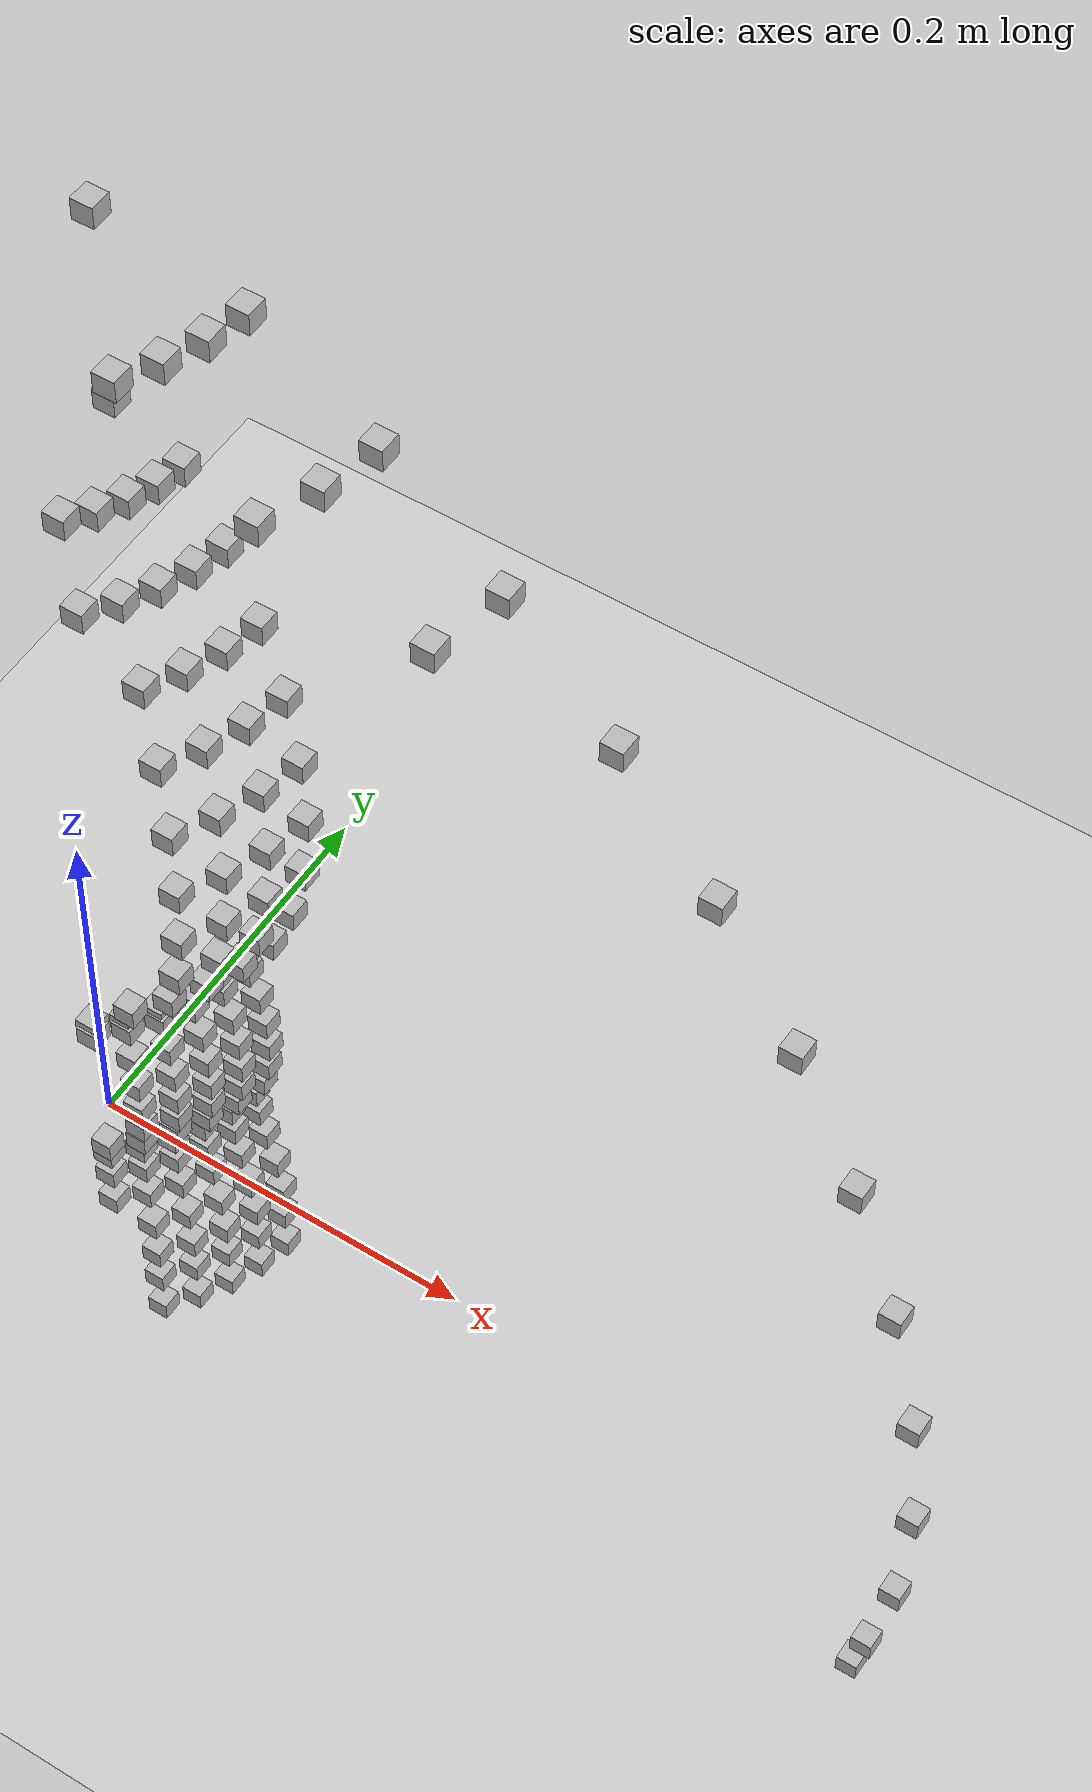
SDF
<sdf version="1.6">
 <world name="default">
  <model name="ground_plane">
   <static>1</static>
   <link name="link">
    <collision name="collision">
     <geometry><plane><normal>0 0 1</normal><size>100 100</size></plane></geometry>
     <surface>
      <contact><collide_bitmask>65535</collide_bitmask></contact>
      <friction><ode><mu>100</mu><mu2>50</mu2></ode></friction>
     </surface>
    </collision>
    <visual name="visual">
     <cast_shadows>0</cast_shadows>
     <geometry><plane><normal>0 0 1</normal><size>100 100</size></plane></geometry>
     <material>
      <script><uri>file://media/materials/scripts/gazebo.material</uri><name>Gazebo/Grey</name></script>
     </material>
    </visual>
   </link>
  </model>
  <model name="box_1685262135_6583939">
   <pose>0.4540607270147136 -0.07191615412157747 0.031024085780011867 0.0 0.0 0.0</pose>
   <static>1</static>
   <link name="box_1685262135_6583939_link">
    <visual name="visual"><geometry><box><size>0.01 0.01 0.01</size></box></geometry></visual>
   </link>
  </model>
  <model name="box_1685262135_6591275">
   <pose>0.45952052723412273 -0.07278090152361237 0.05746253559996678 0.0 0.0 0.0</pose>
   <static>1</static>
   <link name="box_1685262135_6591275_link">
    <visual name="visual"><geometry><box><size>0.01 0.01 0.01</size></box></geometry></visual>
   </link>
  </model>
  <model name="box_1685262135_6598735">
   <pose>0.46918485321748127 -0.07431158038560048 0.11486971929344875 0.0 0.0 0.0</pose>
   <static>1</static>
   <link name="box_1685262135_6598735_link">
    <visual name="visual"><geometry><box><size>0.01 0.01 0.01</size></box></geometry></visual>
   </link>
  </model>
  <model name="box_1685262135_6605964">
   <pose>0.4716907040106615 -0.07470846816101512 0.18152491402812204 0.0 0.0 0.0</pose>
   <static>1</static>
   <link name="box_1685262135_6605964_link">
    <visual name="visual"><geometry><box><size>0.01 0.01 0.01</size></box></geometry></visual>
   </link>
  </model>
  <model name="box_1685262135_6613216">
   <pose>0.46500195805747285 -0.07364907487674634 0.24785452819062248 0.0 0.0 0.0</pose>
   <static>1</static>
   <link name="box_1685262135_6613216_link">
    <visual name="visual"><geometry><box><size>0.01 0.01 0.01</size></box></geometry></visual>
   </link>
  </model>
  <model name="box_1685262135_6620796">
   <pose>0.4492444677104007 -0.07115333358720603 0.31265492137086764 0.0 0.0 0.0</pose>
   <static>1</static>
   <link name="box_1685262135_6620796_link">
    <visual name="visual"><geometry><box><size>0.01 0.01 0.01</size></box></geometry></visual>
   </link>
  </model>
  <model name="box_1685262135_6628158">
   <pose>0.4247687477728366 -0.06727676038335484 0.37450685986133164 0.0 0.0 0.0</pose>
   <static>1</static>
   <link name="box_1685262135_6628158_link">
    <visual name="visual"><geometry><box><size>0.01 0.01 0.01</size></box></geometry></visual>
   </link>
  </model>
  <model name="box_1685262135_6634986">
   <pose>0.08917823515234025 -0.07752145711978618 0.005648136022940203 0.0 0.0 0.0</pose>
   <static>1</static>
   <link name="box_1685262135_6634986_link">
    <visual name="visual"><geometry><box><size>0.01 0.01 0.01</size></box></geometry></visual>
   </link>
  </model>
  <model name="box_1685262135_6635146">
   <pose>0.09909926027639297 -0.06435581210374602 0.005648136022940203 0.0 0.0 0.0</pose>
   <static>1</static>
   <link name="box_1685262135_6635146_link">
    <visual name="visual"><geometry><box><size>0.01 0.01 0.01</size></box></geometry></visual>
   </link>
  </model>
  <model name="box_1685262135_6635308">
   <pose>0.10709143102290353 -0.04993755440875771 0.005648136022940203 0.0 0.0 0.0</pose>
   <static>1</static>
   <link name="box_1685262135_6635308_link">
    <visual name="visual"><geometry><box><size>0.01 0.01 0.01</size></box></geometry></visual>
   </link>
  </model>
  <model name="box_1685262135_663549">
   <pose>0.11299918887925056 -0.034547319020329155 0.005648136022940203 0.0 0.0 0.0</pose>
   <static>1</static>
   <link name="box_1685262135_663549_link">
    <visual name="visual"><geometry><box><size>0.01 0.01 0.01</size></box></geometry></visual>
   </link>
  </model>
  <model name="box_1685262135_6635656">
   <pose>0.11670754605873525 -0.018484659364162822 0.005648136022940203 0.0 0.0 0.0</pose>
   <static>1</static>
   <link name="box_1685262135_6635656_link">
    <visual name="visual"><geometry><box><size>0.01 0.01 0.01</size></box></geometry></visual>
   </link>
  </model>
  <model name="box_1685262135_66429">
   <pose>0.3919687994635383 -0.062081758927712914 0.4324042100445494 0.0 0.0 0.0</pose>
   <static>1</static>
   <link name="box_1685262135_66429_link">
    <visual name="visual"><geometry><box><size>0.01 0.01 0.01</size></box></geometry></visual>
   </link>
  </model>
  <model name="box_1685262135_6649668">
   <pose>0.0887224774976129 -0.07712527303487347 0.02920890265866033 0.0 0.0 0.0</pose>
   <static>1</static>
   <link name="box_1685262135_6649668_link">
    <visual name="visual"><geometry><box><size>0.01 0.01 0.01</size></box></geometry></visual>
   </link>
  </model>
  <model name="box_1685262135_6649828">
   <pose>0.09859279985618362 -0.06402691286120807 0.02920890265866033 0.0 0.0 0.0</pose>
   <static>1</static>
   <link name="box_1685262135_6649828_link">
    <visual name="visual"><geometry><box><size>0.01 0.01 0.01</size></box></geometry></visual>
   </link>
  </model>
  <model name="box_1685262135_6649992">
   <pose>0.10654412551320133 -0.04968234165823315 0.02920890265866033 0.0 0.0 0.0</pose>
   <static>1</static>
   <link name="box_1685262135_6649992_link">
    <visual name="visual"><geometry><box><size>0.01 0.01 0.01</size></box></geometry></visual>
   </link>
  </model>
  <model name="box_1685262135_6650147">
   <pose>0.1124216909592511 -0.03437076018770676 0.02920890265866033 0.0 0.0 0.0</pose>
   <static>1</static>
   <link name="box_1685262135_6650147_link">
    <visual name="visual"><geometry><box><size>0.01 0.01 0.01</size></box></geometry></visual>
   </link>
  </model>
  <model name="box_1685262135_6650329">
   <pose>0.11611109606855717 -0.01839019096628689 0.02920890265866033 0.0 0.0 0.0</pose>
   <static>1</static>
   <link name="box_1685262135_6650329_link">
    <visual name="visual"><geometry><box><size>0.01 0.01 0.01</size></box></geometry></visual>
   </link>
  </model>
  <model name="box_1685262135_665771">
   <pose>0.35147614486358586 -0.05566835249164468 0.4851615351605009 0.0 0.0 0.0</pose>
   <static>1</static>
   <link name="box_1685262135_665771_link">
    <visual name="visual"><geometry><box><size>0.01 0.01 0.01</size></box></geometry></visual>
   </link>
  </model>
  <model name="box_1685262135_6664474">
   <pose>0.0889275985518072 -0.07730358204693145 0.05028140928145608 0.0 0.0 0.0</pose>
   <static>1</static>
   <link name="box_1685262135_6664474_link">
    <visual name="visual"><geometry><box><size>0.01 0.01 0.01</size></box></geometry></visual>
   </link>
  </model>
  <model name="box_1685262135_6664631">
   <pose>0.09882074050451606 -0.06417493924903352 0.05028140928145608 0.0 0.0 0.0</pose>
   <static>1</static>
   <link name="box_1685262135_6664631_link">
    <visual name="visual"><geometry><box><size>0.01 0.01 0.01</size></box></geometry></visual>
   </link>
  </model>
  <model name="box_1685262135_6664793">
   <pose>0.1067904491502308 -0.04979720425656458 0.05028140928145608 0.0 0.0 0.0</pose>
   <static>1</static>
   <link name="box_1685262135_6664793_link">
    <visual name="visual"><geometry><box><size>0.01 0.01 0.01</size></box></geometry></visual>
   </link>
  </model>
  <model name="box_1685262135_6664953">
   <pose>0.11268160317557177 -0.03445022332672191 0.05028140928145608 0.0 0.0 0.0</pose>
   <static>1</static>
   <link name="box_1685262135_6664953_link">
    <visual name="visual"><geometry><box><size>0.01 0.01 0.01</size></box></geometry></visual>
   </link>
  </model>
  <model name="box_1685262135_666511">
   <pose>0.11637953796852414 -0.018432707986372816 0.05028140928145608 0.0 0.0 0.0</pose>
   <static>1</static>
   <link name="box_1685262135_666511_link">
    <visual name="visual"><geometry><box><size>0.01 0.01 0.01</size></box></geometry></visual>
   </link>
  </model>
  <model name="box_1685262135_6672397">
   <pose>0.304111045966668 -0.04816645781194004 0.5316791207351375 0.0 0.0 0.0</pose>
   <static>1</static>
   <link name="box_1685262135_6672397_link">
    <visual name="visual"><geometry><box><size>0.01 0.01 0.01</size></box></geometry></visual>
   </link>
  </model>
  <model name="box_1685262135_667919">
   <pose>0.08671504892758838 -0.07538024200183777 0.06994559093984248 0.0 0.0 0.0</pose>
   <static>1</static>
   <link name="box_1685262135_667919_link">
    <visual name="visual"><geometry><box><size>0.01 0.01 0.01</size></box></geometry></visual>
   </link>
  </model>
  <model name="box_1685262135_6679347">
   <pose>0.09636204606286965 -0.06257824440927583 0.06994559093984248 0.0 0.0 0.0</pose>
   <static>1</static>
   <link name="box_1685262135_6679347_link">
    <visual name="visual"><geometry><box><size>0.01 0.01 0.01</size></box></geometry></visual>
   </link>
  </model>
  <model name="box_1685262135_6679506">
   <pose>0.10413346558173996 -0.04855823247098531 0.06994559093984248 0.0 0.0 0.0</pose>
   <static>1</static>
   <link name="box_1685262135_6679506_link">
    <visual name="visual"><geometry><box><size>0.01 0.01 0.01</size></box></geometry></visual>
   </link>
  </model>
  <model name="box_1685262135_6679661">
   <pose>0.10987804564312317 -0.03359308977181784 0.06994559093984248 0.0 0.0 0.0</pose>
   <static>1</static>
   <link name="box_1685262135_6679661_link">
    <visual name="visual"><geometry><box><size>0.01 0.01 0.01</size></box></geometry></visual>
   </link>
  </model>
  <model name="box_1685262135_667982">
   <pose>0.11348397453048746 -0.017974095791815185 0.06994559093984248 0.0 0.0 0.0</pose>
   <static>1</static>
   <link name="box_1685262135_667982_link">
    <visual name="visual"><geometry><box><size>0.01 0.01 0.01</size></box></geometry></visual>
   </link>
  </model>
  <model name="box_1685262135_6686966">
   <pose>0.24288026590292308 -0.07425594920736132 0.5710245451470004 0.0 0.0 0.0</pose>
   <static>1</static>
   <link name="box_1685262135_6686966_link">
    <visual name="visual"><geometry><box><size>0.01 0.01 0.01</size></box></geometry></visual>
   </link>
  </model>
  <model name="box_1685262135_6687126">
   <pose>0.25085100256704834 -0.039730895646430765 0.5710245451470004 0.0 0.0 0.0</pose>
   <static>1</static>
   <link name="box_1685262135_6687126_link">
    <visual name="visual"><geometry><box><size>0.01 0.01 0.01</size></box></geometry></visual>
   </link>
  </model>
  <model name="box_1685262135_66957">
   <pose>0.0716725505481329 -0.08244983781552295 0.08776207523471741 0.0 0.0 0.0</pose>
   <static>1</static>
   <link name="box_1685262135_66957_link">
    <visual name="visual"><geometry><box><size>0.01 0.01 0.01</size></box></geometry></visual>
   </link>
  </model>
  <model name="box_1685262135_6695867">
   <pose>0.08244983781552297 -0.0716725505481329 0.08776207523471741 0.0 0.0 0.0</pose>
   <static>1</static>
   <link name="box_1685262135_6695867_link">
    <visual name="visual"><geometry><box><size>0.01 0.01 0.01</size></box></geometry></visual>
   </link>
  </model>
  <model name="box_1685262135_6696033">
   <pose>0.0916223327751343 -0.059500238610641354 0.08776207523471741 0.0 0.0 0.0</pose>
   <static>1</static>
   <link name="box_1685262135_6696033_link">
    <visual name="visual"><geometry><box><size>0.01 0.01 0.01</size></box></geometry></visual>
   </link>
  </model>
  <model name="box_1685262135_66962">
   <pose>0.0990115032461365 -0.04616982220911195 0.08776207523471741 0.0 0.0 0.0</pose>
   <static>1</static>
   <link name="box_1685262135_66962_link">
    <visual name="visual"><geometry><box><size>0.01 0.01 0.01</size></box></geometry></visual>
   </link>
  </model>
  <model name="box_1685262135_669636">
   <pose>0.10447352743036831 -0.03194076273567656 0.08776207523471741 0.0 0.0 0.0</pose>
   <static>1</static>
   <link name="box_1685262135_669636_link">
    <visual name="visual"><geometry><box><size>0.01 0.01 0.01</size></box></geometry></visual>
   </link>
  </model>
  <model name="box_1685262135_6696527">
   <pose>0.10790209324004411 -0.01709001264767032 0.08776207523471741 0.0 0.0 0.0</pose>
   <static>1</static>
   <link name="box_1685262135_6696527_link">
    <visual name="visual"><geometry><box><size>0.01 0.01 0.01</size></box></geometry></visual>
   </link>
  </model>
  <model name="box_1685262135_6704595">
   <pose>0.1767150344268601 -0.08240357386436908 0.6025204345093003 0.0 0.0 0.0</pose>
   <static>1</static>
   <link name="box_1685262135_6704595_link">
    <visual name="visual"><geometry><box><size>0.01 0.01 0.01</size></box></geometry></visual>
   </link>
  </model>
  <model name="box_1685262135_6704757">
   <pose>0.1864636167643829 -0.05700764862062128 0.6025204345093003 0.0 0.0 0.0</pose>
   <static>1</static>
   <link name="box_1685262135_6704757_link">
    <visual name="visual"><geometry><box><size>0.01 0.01 0.01</size></box></geometry></visual>
   </link>
  </model>
  <model name="box_1685262135_6704924">
   <pose>0.19258289690080743 -0.030502134341712256 0.6025204345093003 0.0 0.0 0.0</pose>
   <static>1</static>
   <link name="box_1685262135_6704924_link">
    <visual name="visual"><geometry><box><size>0.01 0.01 0.01</size></box></geometry></visual>
   </link>
  </model>
  <model name="box_1685262135_671206">
   <pose>0.0692921285337603 -0.0797114755343353 0.10333120046485805 0.0 0.0 0.0</pose>
   <static>1</static>
   <link name="box_1685262135_671206_link">
    <visual name="visual"><geometry><box><size>0.01 0.01 0.01</size></box></geometry></visual>
   </link>
  </model>
  <model name="box_1685262135_6712234">
   <pose>0.0797114755343353 -0.06929212853376028 0.10333120046485805 0.0 0.0 0.0</pose>
   <static>1</static>
   <link name="box_1685262135_6712234_link">
    <visual name="visual"><geometry><box><size>0.01 0.01 0.01</size></box></geometry></visual>
   </link>
  </model>
  <model name="box_1685262135_6712399">
   <pose>0.088579329334094 -0.05752408906990363 0.10333120046485805 0.0 0.0 0.0</pose>
   <static>1</static>
   <link name="box_1685262135_6712399_link">
    <visual name="visual"><geometry><box><size>0.01 0.01 0.01</size></box></geometry></visual>
   </link>
  </model>
  <model name="box_1685262135_671257">
   <pose>0.09572308724585828 -0.04463640864498279 0.10333120046485805 0.0 0.0 0.0</pose>
   <static>1</static>
   <link name="box_1685262135_671257_link">
    <visual name="visual"><geometry><box><size>0.01 0.01 0.01</size></box></geometry></visual>
   </link>
  </model>
  <model name="box_1685262135_6712737">
   <pose>0.10100370414777984 -0.03087993129894966 0.10333120046485805 0.0 0.0 0.0</pose>
   <static>1</static>
   <link name="box_1685262135_6712737_link">
    <visual name="visual"><geometry><box><size>0.01 0.01 0.01</size></box></geometry></visual>
   </link>
  </model>
  <model name="box_1685262135_6712906">
   <pose>0.1043183988384755 -0.016522411215583697 0.10333120046485805 0.0 0.0 0.0</pose>
   <static>1</static>
   <link name="box_1685262135_6712906_link">
    <visual name="visual"><geometry><box><size>0.01 0.01 0.01</size></box></geometry></visual>
   </link>
  </model>
  <model name="box_1685262135_672011">
   <pose>0.11091599736803989 -0.0720296908978802 0.6254485040649695 0.0 0.0 0.0</pose>
   <static>1</static>
   <link name="box_1685262135_672011_link">
    <visual name="visual"><geometry><box><size>0.01 0.01 0.01</size></box></geometry></visual>
   </link>
  </model>
  <model name="box_1685262135_6720273">
   <pose>0.11986116594964694 -0.05589217959770752 0.6254485040649695 0.0 0.0 0.0</pose>
   <static>1</static>
   <link name="box_1685262135_6720273_link">
    <visual name="visual"><geometry><box><size>0.01 0.01 0.01</size></box></geometry></visual>
   </link>
  </model>
  <model name="box_1685262135_672044">
   <pose>0.1264733732760996 -0.03866679059807746 0.6254485040649695 0.0 0.0 0.0</pose>
   <static>1</static>
   <link name="box_1685262135_672044_link">
    <visual name="visual"><geometry><box><size>0.01 0.01 0.01</size></box></geometry></visual>
   </link>
  </model>
  <model name="box_1685262135_6720603">
   <pose>0.13062392025306283 -0.020688796502278218 0.6254485040649695 0.0 0.0 0.0</pose>
   <static>1</static>
   <link name="box_1685262135_6720603_link">
    <visual name="visual"><geometry><box><size>0.01 0.01 0.01</size></box></geometry></visual>
   </link>
  </model>
  <model name="box_1685262135_6727426">
   <pose>0.06850178705530718 -0.0788022916666065 0.1175214826546544 0.0 0.0 0.0</pose>
   <static>1</static>
   <link name="box_1685262135_6727426_link">
    <visual name="visual"><geometry><box><size>0.01 0.01 0.01</size></box></geometry></visual>
   </link>
  </model>
  <model name="box_1685262135_6727707">
   <pose>0.07880229166660652 -0.06850178705530717 0.1175214826546544 0.0 0.0 0.0</pose>
   <static>1</static>
   <link name="box_1685262135_6727707_link">
    <visual name="visual"><geometry><box><size>0.01 0.01 0.01</size></box></geometry></visual>
   </link>
  </model>
  <model name="box_1685262135_6727903">
   <pose>0.08756899930689353 -0.0568679730786042 0.1175214826546544 0.0 0.0 0.0</pose>
   <static>1</static>
   <link name="box_1685262135_6727903_link">
    <visual name="visual"><geometry><box><size>0.01 0.01 0.01</size></box></geometry></visual>
   </link>
  </model>
  <model name="box_1685262135_6728072">
   <pose>0.09463127598393223 -0.0441272886922868 0.1175214826546544 0.0 0.0 0.0</pose>
   <static>1</static>
   <link name="box_1685262135_6728072_link">
    <visual name="visual"><geometry><box><size>0.01 0.01 0.01</size></box></geometry></visual>
   </link>
  </model>
  <model name="box_1685262135_6728237">
   <pose>0.0998516625154247 -0.03052771682562097 0.1175214826546544 0.0 0.0 0.0</pose>
   <static>1</static>
   <link name="box_1685262135_6728237_link">
    <visual name="visual"><geometry><box><size>0.01 0.01 0.01</size></box></geometry></visual>
   </link>
  </model>
  <model name="box_1685262135_672842">
   <pose>0.1031285500156371 -0.016333957675707632 0.1175214826546544 0.0 0.0 0.0</pose>
   <static>1</static>
   <link name="box_1685262135_672842_link">
    <visual name="visual"><geometry><box><size>0.01 0.01 0.01</size></box></geometry></visual>
   </link>
  </model>
  <model name="box_1685262135_6735914">
   <pose>0.06400261402086008 -0.019567562799733165 0.6394057500981778 0.0 0.0 0.0</pose>
   <static>1</static>
   <link name="box_1685262135_6735914_link">
    <visual name="visual"><geometry><box><size>0.01 0.01 0.01</size></box></geometry></visual>
   </link>
  </model>
  <model name="box_1685262135_6742835">
   <pose>0.07231282762388799 -0.08318639233533946 0.13255102465284446 0.0 0.0 0.0</pose>
   <static>1</static>
   <link name="box_1685262135_6742835_link">
    <visual name="visual"><geometry><box><size>0.01 0.01 0.01</size></box></geometry></visual>
   </link>
  </model>
  <model name="box_1685262135_6743">
   <pose>0.08318639233533948 -0.07231282762388798 0.13255102465284446 0.0 0.0 0.0</pose>
   <static>1</static>
   <link name="box_1685262135_6743_link">
    <visual name="visual"><geometry><box><size>0.01 0.01 0.01</size></box></geometry></visual>
   </link>
  </model>
  <model name="box_1685262135_6743183">
   <pose>0.09244082854310234 -0.060031775977359834 0.13255102465284446 0.0 0.0 0.0</pose>
   <static>1</static>
   <link name="box_1685262135_6743183_link">
    <visual name="visual"><geometry><box><size>0.01 0.01 0.01</size></box></geometry></visual>
   </link>
  </model>
  <model name="box_1685262135_67434">
   <pose>0.09989600917315772 -0.046582274096565436 0.13255102465284446 0.0 0.0 0.0</pose>
   <static>1</static>
   <link name="box_1685262135_67434_link">
    <visual name="visual"><geometry><box><size>0.01 0.01 0.01</size></box></geometry></visual>
   </link>
  </model>
  <model name="box_1685262135_6743646">
   <pose>0.10540682761468383 -0.03222610123703283 0.13255102465284446 0.0 0.0 0.0</pose>
   <static>1</static>
   <link name="box_1685262135_6743646_link">
    <visual name="visual"><geometry><box><size>0.01 0.01 0.01</size></box></geometry></visual>
   </link>
  </model>
  <model name="box_1685262135_674382">
   <pose>0.10886602205517945 -0.01724268397356822 0.13255102465284446 0.0 0.0 0.0</pose>
   <static>1</static>
   <link name="box_1685262135_674382_link">
    <visual name="visual"><geometry><box><size>0.01 0.01 0.01</size></box></geometry></visual>
   </link>
  </model>
  <model name="box_1685262135_675871">
   <pose>0.08593245302187841 -0.0746999417599348 0.14825398363050718 0.0 0.0 0.0</pose>
   <static>1</static>
   <link name="box_1685262135_675871_link">
    <visual name="visual"><geometry><box><size>0.01 0.01 0.01</size></box></geometry></visual>
   </link>
  </model>
  <model name="box_1685262135_6758873">
   <pose>0.09549238683246766 -0.06201348110155847 0.14825398363050718 0.0 0.0 0.0</pose>
   <static>1</static>
   <link name="box_1685262135_6758873_link">
    <visual name="visual"><geometry><box><size>0.01 0.01 0.01</size></box></geometry></visual>
   </link>
  </model>
  <model name="box_1685262135_6759067">
   <pose>0.10319366995434301 -0.04811999857282953 0.14825398363050718 0.0 0.0 0.0</pose>
   <static>1</static>
   <link name="box_1685262135_6759067_link">
    <visual name="visual"><geometry><box><size>0.01 0.01 0.01</size></box></geometry></visual>
   </link>
  </model>
  <model name="box_1685262135_6759238">
   <pose>0.10888640567161686 -0.03328991500756757 0.14825398363050718 0.0 0.0 0.0</pose>
   <static>1</static>
   <link name="box_1685262135_6759238_link">
    <visual name="visual"><geometry><box><size>0.01 0.01 0.01</size></box></geometry></visual>
   </link>
  </model>
  <model name="box_1685262135_6759408">
   <pose>0.1124597913589434 -0.017811881113400374 0.14825398363050718 0.0 0.0 0.0</pose>
   <static>1</static>
   <link name="box_1685262135_6759408_link">
    <visual name="visual"><geometry><box><size>0.01 0.01 0.01</size></box></geometry></visual>
   </link>
  </model>
  <model name="box_1685262135_6767077">
   <pose>0.08698527347190169 -0.07561514461444174 0.16428489958480497 0.0 0.0 0.0</pose>
   <static>1</static>
   <link name="box_1685262135_6767077_link">
    <visual name="visual"><geometry><box><size>0.01 0.01 0.01</size></box></geometry></visual>
   </link>
  </model>
  <model name="box_1685262135_6767237">
   <pose>0.09666233292551307 -0.06277325297801392 0.16428489958480497 0.0 0.0 0.0</pose>
   <static>1</static>
   <link name="box_1685262135_6767237_link">
    <visual name="visual"><geometry><box><size>0.01 0.01 0.01</size></box></geometry></visual>
   </link>
  </model>
  <model name="box_1685262135_6767423">
   <pose>0.10445797002050339 -0.048709551375885986 0.16428489958480497 0.0 0.0 0.0</pose>
   <static>1</static>
   <link name="box_1685262135_6767423_link">
    <visual name="visual"><geometry><box><size>0.01 0.01 0.01</size></box></geometry></visual>
   </link>
  </model>
  <model name="box_1685262135_6767633">
   <pose>0.11022045154822441 -0.03369777376251991 0.16428489958480497 0.0 0.0 0.0</pose>
   <static>1</static>
   <link name="box_1685262135_6767633_link">
    <visual name="visual"><geometry><box><size>0.01 0.01 0.01</size></box></geometry></visual>
   </link>
  </model>
  <model name="box_1685262135_6767805">
   <pose>0.11383761736046465 -0.018030107313515908 0.16428489958480497 0.0 0.0 0.0</pose>
   <static>1</static>
   <link name="box_1685262135_6767805_link">
    <visual name="visual"><geometry><box><size>0.01 0.01 0.01</size></box></geometry></visual>
   </link>
  </model>
  <model name="box_1685262135_6774693">
   <pose>0.08635262059161211 -0.07506518785596478 0.18035913689155542 0.0 0.0 0.0</pose>
   <static>1</static>
   <link name="box_1685262135_6774693_link">
    <visual name="visual"><geometry><box><size>0.01 0.01 0.01</size></box></geometry></visual>
   </link>
  </model>
  <model name="box_1685262135_6774855">
   <pose>0.09595929779209374 -0.06231669662408678 0.18035913689155542 0.0 0.0 0.0</pose>
   <static>1</static>
   <link name="box_1685262135_6774855_link">
    <visual name="visual"><geometry><box><size>0.01 0.01 0.01</size></box></geometry></visual>
   </link>
  </model>
  <model name="box_1685262135_6775043">
   <pose>0.10369823641313569 -0.048355281776612705 0.18035913689155542 0.0 0.0 0.0</pose>
   <static>1</static>
   <link name="box_1685262135_6775043_link">
    <visual name="visual"><geometry><box><size>0.01 0.01 0.01</size></box></geometry></visual>
   </link>
  </model>
  <model name="box_1685262135_6775212">
   <pose>0.10941880681739159 -0.03345268637267465 0.18035913689155542 0.0 0.0 0.0</pose>
   <static>1</static>
   <link name="box_1685262135_6775212_link">
    <visual name="visual"><geometry><box><size>0.01 0.01 0.01</size></box></geometry></visual>
   </link>
  </model>
  <model name="box_1685262135_6775374">
   <pose>0.113009664608995 -0.01789897248035923 0.18035913689155542 0.0 0.0 0.0</pose>
   <static>1</static>
   <link name="box_1685262135_6775374_link">
    <visual name="visual"><geometry><box><size>0.01 0.01 0.01</size></box></geometry></visual>
   </link>
  </model>
  <model name="box_1685262135_6782086">
   <pose>0.08403575467301609 -0.07305116703963085 0.19617448160834577 0.0 0.0 0.0</pose>
   <static>1</static>
   <link name="box_1685262135_6782086_link">
    <visual name="visual"><geometry><box><size>0.01 0.01 0.01</size></box></geometry></visual>
   </link>
  </model>
  <model name="box_1685262135_6782248">
   <pose>0.09338468193094518 -0.060644721534290166 0.19617448160834577 0.0 0.0 0.0</pose>
   <static>1</static>
   <link name="box_1685262135_6782248_link">
    <visual name="visual"><geometry><box><size>0.01 0.01 0.01</size></box></geometry></visual>
   </link>
  </model>
  <model name="box_1685262135_678241">
   <pose>0.10091598257858972 -0.04705789550663281 0.19617448160834577 0.0 0.0 0.0</pose>
   <static>1</static>
   <link name="box_1685262135_678241_link">
    <visual name="visual"><geometry><box><size>0.01 0.01 0.01</size></box></geometry></visual>
   </link>
  </model>
  <model name="box_1685262135_6782596">
   <pose>0.10648306841557081 -0.03255514107050162 0.19617448160834577 0.0 0.0 0.0</pose>
   <static>1</static>
   <link name="box_1685262135_6782596_link">
    <visual name="visual"><geometry><box><size>0.01 0.01 0.01</size></box></geometry></visual>
   </link>
  </model>
  <model name="box_1685262135_6782768">
   <pose>0.10997758244853792 -0.017418737844357223 0.19617448160834577 0.0 0.0 0.0</pose>
   <static>1</static>
   <link name="box_1685262135_6782768_link">
    <visual name="visual"><geometry><box><size>0.01 0.01 0.01</size></box></geometry></visual>
   </link>
  </model>
  <model name="box_1685262135_678941">
   <pose>0.06960324983207926 -0.08006937964673501 0.2113835132273968 0.0 0.0 0.0</pose>
   <static>1</static>
   <link name="box_1685262135_678941_link">
    <visual name="visual"><geometry><box><size>0.01 0.01 0.01</size></box></geometry></visual>
   </link>
  </model>
  <model name="box_1685262135_678957">
   <pose>0.08006937964673502 -0.06960324983207924 0.2113835132273968 0.0 0.0 0.0</pose>
   <static>1</static>
   <link name="box_1685262135_678957_link">
    <visual name="visual"><geometry><box><size>0.01 0.01 0.01</size></box></geometry></visual>
   </link>
  </model>
  <model name="box_1685262135_6789734">
   <pose>0.0889770500641365 -0.05778237193196529 0.2113835132273968 0.0 0.0 0.0</pose>
   <static>1</static>
   <link name="box_1685262135_6789734_link">
    <visual name="visual"><geometry><box><size>0.01 0.01 0.01</size></box></geometry></visual>
   </link>
  </model>
  <model name="box_1685262135_6789932">
   <pose>0.09615288341193393 -0.044836825888669524 0.2113835132273968 0.0 0.0 0.0</pose>
   <static>1</static>
   <link name="box_1685262135_6789932_link">
    <visual name="visual"><geometry><box><size>0.01 0.01 0.01</size></box></geometry></visual>
   </link>
  </model>
  <model name="box_1685262135_679012">
   <pose>0.10145721025640185 -0.03101858203058433 0.2113835132273968 0.0 0.0 0.0</pose>
   <static>1</static>
   <link name="box_1685262135_679012_link">
    <visual name="visual"><geometry><box><size>0.01 0.01 0.01</size></box></geometry></visual>
   </link>
  </model>
  <model name="box_1685262135_6790292">
   <pose>0.1047867879090951 -0.016596596756387912 0.2113835132273968 0.0 0.0 0.0</pose>
   <static>1</static>
   <link name="box_1685262135_6790292_link">
    <visual name="visual"><geometry><box><size>0.01 0.01 0.01</size></box></geometry></visual>
   </link>
  </model>
  <model name="box_1685262135_6796846">
   <pose>0.06852881772066176 -0.07883338689005656 0.21508165296930842 0.0 0.0 0.0</pose>
   <static>1</static>
   <link name="box_1685262135_6796846_link">
    <visual name="visual"><geometry><box><size>0.01 0.01 0.01</size></box></geometry></visual>
   </link>
  </model>
  <model name="box_1685262135_6797004">
   <pose>0.07883338689005658 -0.06852881772066174 0.21508165296930842 0.0 0.0 0.0</pose>
   <static>1</static>
   <link name="box_1685262135_6797004_link">
    <visual name="visual"><geometry><box><size>0.01 0.01 0.01</size></box></geometry></visual>
   </link>
  </model>
  <model name="box_1685262135_6797166">
   <pose>0.08760355385528493 -0.05689041306470908 0.21508165296930842 0.0 0.0 0.0</pose>
   <static>1</static>
   <link name="box_1685262135_6797166_link">
    <visual name="visual"><geometry><box><size>0.01 0.01 0.01</size></box></geometry></visual>
   </link>
  </model>
  <model name="box_1685262135_6797328">
   <pose>0.09466861729228572 -0.04414470123033756 0.21508165296930842 0.0 0.0 0.0</pose>
   <static>1</static>
   <link name="box_1685262135_6797328_link">
    <visual name="visual"><geometry><box><size>0.01 0.01 0.01</size></box></geometry></visual>
   </link>
  </model>
  <model name="box_1685262135_6797485">
   <pose>0.09989106377764831 -0.030539763000370927 0.21508165296930842 0.0 0.0 0.0</pose>
   <static>1</static>
   <link name="box_1685262135_6797485_link">
    <visual name="visual"><geometry><box><size>0.01 0.01 0.01</size></box></geometry></visual>
   </link>
  </model>
  <model name="box_1685262135_6797674">
   <pose>0.10316924433097992 -0.016340403022067594 0.21508165296930842 0.0 0.0 0.0</pose>
   <static>1</static>
   <link name="box_1685262135_6797674_link">
    <visual name="visual"><geometry><box><size>0.01 0.01 0.01</size></box></geometry></visual>
   </link>
  </model>
  <model name="box_1685262135_6804404">
   <pose>0.09227206219252178 -0.08021087993491322 0.24636117300793503 0.0 0.0 0.0</pose>
   <static>1</static>
   <link name="box_1685262135_6804404_link">
    <visual name="visual"><geometry><box><size>0.01 0.01 0.01</size></box></geometry></visual>
   </link>
  </model>
  <model name="box_1685262135_6804564">
   <pose>0.10253727371746797 -0.06658848413789523 0.24636117300793503 0.0 0.0 0.0</pose>
   <static>1</static>
   <link name="box_1685262135_6804564_link">
    <visual name="visual"><geometry><box><size>0.01 0.01 0.01</size></box></geometry></visual>
   </link>
  </model>
  <model name="box_1685262135_6804726">
   <pose>0.11080671384392378 -0.05167001924041116 0.24636117300793503 0.0 0.0 0.0</pose>
   <static>1</static>
   <link name="box_1685262135_6804726_link">
    <visual name="visual"><geometry><box><size>0.01 0.01 0.01</size></box></geometry></visual>
   </link>
  </model>
  <model name="box_1685262135_680489">
   <pose>0.1169194273261765 -0.03574585619218826 0.24636117300793503 0.0 0.0 0.0</pose>
   <static>1</static>
   <link name="box_1685262135_680489_link">
    <visual name="visual"><geometry><box><size>0.01 0.01 0.01</size></box></geometry></visual>
   </link>
  </model>
  <model name="box_1685262135_6805077">
   <pose>0.12075643714940258 -0.019125940713493172 0.24636117300793503 0.0 0.0 0.0</pose>
   <static>1</static>
   <link name="box_1685262135_6805077_link">
    <visual name="visual"><geometry><box><size>0.01 0.01 0.01</size></box></geometry></visual>
   </link>
  </model>
  <model name="box_1685262135_6811793">
   <pose>0.1137066522858482 -0.07384196339149889 0.2798396861917631 0.0 0.0 0.0</pose>
   <static>1</static>
   <link name="box_1685262135_6811793_link">
    <visual name="visual"><geometry><box><size>0.01 0.01 0.01</size></box></geometry></visual>
   </link>
  </model>
  <model name="box_1685262135_681196">
   <pose>0.12287688198835067 -0.05729843108137593 0.2798396861917631 0.0 0.0 0.0</pose>
   <static>1</static>
   <link name="box_1685262135_681196_link">
    <visual name="visual"><geometry><box><size>0.01 0.01 0.01</size></box></geometry></visual>
   </link>
  </model>
  <model name="box_1685262135_6812155">
   <pose>0.12965545295333156 -0.03963964998625334 0.2798396861917631 0.0 0.0 0.0</pose>
   <static>1</static>
   <link name="box_1685262135_6812155_link">
    <visual name="visual"><geometry><box><size>0.01 0.01 0.01</size></box></geometry></visual>
   </link>
  </model>
  <model name="box_1685262135_6812322">
   <pose>0.13391042800746766 -0.021209328193581876 0.2798396861917631 0.0 0.0 0.0</pose>
   <static>1</static>
   <link name="box_1685262135_6812322_link">
    <visual name="visual"><geometry><box><size>0.01 0.01 0.01</size></box></geometry></visual>
   </link>
  </model>
  <model name="box_1685262135_6819527">
   <pose>0.12084001858029847 -0.07847442562817408 0.314821790288947 0.0 0.0 0.0</pose>
   <static>1</static>
   <link name="box_1685262135_6819527_link">
    <visual name="visual"><geometry><box><size>0.01 0.01 0.01</size></box></geometry></visual>
   </link>
  </model>
  <model name="box_1685262135_681969">
   <pose>0.13058554098694067 -0.060893037806523886 0.314821790288947 0.0 0.0 0.0</pose>
   <static>1</static>
   <link name="box_1685262135_681969_link">
    <visual name="visual"><geometry><box><size>0.01 0.01 0.01</size></box></geometry></visual>
   </link>
  </model>
  <model name="box_1685262135_6819851">
   <pose>0.13778936437712333 -0.04212643626877358 0.314821790288947 0.0 0.0 0.0</pose>
   <static>1</static>
   <link name="box_1685262135_6819851_link">
    <visual name="visual"><geometry><box><size>0.01 0.01 0.01</size></box></geometry></visual>
   </link>
  </model>
  <model name="box_1685262135_682001">
   <pose>0.14231127452278425 -0.022539891567162622 0.314821790288947 0.0 0.0 0.0</pose>
   <static>1</static>
   <link name="box_1685262135_682001_link">
    <visual name="visual"><geometry><box><size>0.01 0.01 0.01</size></box></geometry></visual>
   </link>
  </model>
  <model name="box_1685262135_6826706">
   <pose>0.12382346290551367 -0.08041189702685086 0.3506667056619606 0.0 0.0 0.0</pose>
   <static>1</static>
   <link name="box_1685262135_6826706_link">
    <visual name="visual"><geometry><box><size>0.01 0.01 0.01</size></box></geometry></visual>
   </link>
  </model>
  <model name="box_1685262135_682687">
   <pose>0.13380959453964478 -0.062396438668451654 0.3506667056619606 0.0 0.0 0.0</pose>
   <static>1</static>
   <link name="box_1685262135_682687_link">
    <visual name="visual"><geometry><box><size>0.01 0.01 0.01</size></box></geometry></visual>
   </link>
  </model>
  <model name="box_1685262135_6827028">
   <pose>0.14119127462221956 -0.04316650460626806 0.3506667056619606 0.0 0.0 0.0</pose>
   <static>1</static>
   <link name="box_1685262135_6827028_link">
    <visual name="visual"><geometry><box><size>0.01 0.01 0.01</size></box></geometry></visual>
   </link>
  </model>
  <model name="box_1685262135_682719">
   <pose>0.14582482714696735 -0.02309638363309467 0.3506667056619606 0.0 0.0 0.0</pose>
   <static>1</static>
   <link name="box_1685262135_682719_link">
    <visual name="visual"><geometry><box><size>0.01 0.01 0.01</size></box></geometry></visual>
   </link>
  </model>
  <model name="box_1685262135_6833997">
   <pose>0.12258780585570887 -0.07960945195611958 0.38661397693110494 0.0 0.0 0.0</pose>
   <static>1</static>
   <link name="box_1685262135_6833997_link">
    <visual name="visual"><geometry><box><size>0.01 0.01 0.01</size></box></geometry></visual>
   </link>
  </model>
  <model name="box_1685262135_683416">
   <pose>0.13247428405046388 -0.0617737731613319 0.38661397693110494 0.0 0.0 0.0</pose>
   <static>1</static>
   <link name="box_1685262135_683416_link">
    <visual name="visual"><geometry><box><size>0.01 0.01 0.01</size></box></geometry></visual>
   </link>
  </model>
  <model name="box_1685262135_6834319">
   <pose>0.1397823009934413 -0.042735738138584396 0.38661397693110494 0.0 0.0 0.0</pose>
   <static>1</static>
   <link name="box_1685262135_6834319_link">
    <visual name="visual"><geometry><box><size>0.01 0.01 0.01</size></box></geometry></visual>
   </link>
  </model>
  <model name="box_1685262135_6834483">
   <pose>0.14436961444759214 -0.022865900584150972 0.38661397693110494 0.0 0.0 0.0</pose>
   <static>1</static>
   <link name="box_1685262135_6834483_link">
    <visual name="visual"><geometry><box><size>0.01 0.01 0.01</size></box></geometry></visual>
   </link>
  </model>
  <model name="box_1685262135_6841412">
   <pose>0.11715253764032249 -0.07607974750598259 0.42204584917069304 0.0 0.0 0.0</pose>
   <static>1</static>
   <link name="box_1685262135_6841412_link">
    <visual name="visual"><geometry><box><size>0.01 0.01 0.01</size></box></geometry></visual>
   </link>
  </model>
  <model name="box_1685262135_6841662">
   <pose>0.12660067157792268 -0.059034862684351215 0.42204584917069304 0.0 0.0 0.0</pose>
   <static>1</static>
   <link name="box_1685262135_6841662_link">
    <visual name="visual"><geometry><box><size>0.01 0.01 0.01</size></box></geometry></visual>
   </link>
  </model>
  <model name="box_1685262135_6841908">
   <pose>0.1335846674493881 -0.04084093141172996 0.42204584917069304 0.0 0.0 0.0</pose>
   <static>1</static>
   <link name="box_1685262135_6841908_link">
    <visual name="visual"><geometry><box><size>0.01 0.01 0.01</size></box></geometry></visual>
   </link>
  </model>
  <model name="box_1685262135_6842144">
   <pose>0.1379685897192583 -0.021852077865050296 0.42204584917069304 0.0 0.0 0.0</pose>
   <static>1</static>
   <link name="box_1685262135_6842144_link">
    <visual name="visual"><geometry><box><size>0.01 0.01 0.01</size></box></geometry></visual>
   </link>
  </model>
  <model name="box_1685262135_6849945">
   <pose>0.10762884523117774 -0.0698949893402065 0.45627229759588134 0.0 0.0 0.0</pose>
   <static>1</static>
   <link name="box_1685262135_6849945_link">
    <visual name="visual"><geometry><box><size>0.01 0.01 0.01</size></box></geometry></visual>
   </link>
  </model>
  <model name="box_1685262135_6850107">
   <pose>0.11630891111601101 -0.05423573596506498 0.45627229759588134 0.0 0.0 0.0</pose>
   <static>1</static>
   <link name="box_1685262135_6850107_link">
    <visual name="visual"><geometry><box><size>0.01 0.01 0.01</size></box></geometry></visual>
   </link>
  </model>
  <model name="box_1685262135_685027">
   <pose>0.12272515634539662 -0.03752084568159875 0.45627229759588134 0.0 0.0 0.0</pose>
   <static>1</static>
   <link name="box_1685262135_685027_link">
    <visual name="visual"><geometry><box><size>0.01 0.01 0.01</size></box></geometry></visual>
   </link>
  </model>
  <model name="box_1685262135_685043">
   <pose>0.12675269600431538 -0.020075654816269578 0.45627229759588134 0.0 0.0 0.0</pose>
   <static>1</static>
   <link name="box_1685262135_685043_link">
    <visual name="visual"><geometry><box><size>0.01 0.01 0.01</size></box></geometry></visual>
   </link>
  </model>
  <model name="box_1685262135_6857035">
   <pose>0.08475860810938578 -0.07367953394525191 0.4885508417419748 0.0 0.0 0.0</pose>
   <static>1</static>
   <link name="box_1685262135_6857035_link">
    <visual name="visual"><geometry><box><size>0.01 0.01 0.01</size></box></geometry></visual>
   </link>
  </model>
  <model name="box_1685262135_6857202">
   <pose>0.09418795237815815 -0.06116637146210143 0.4885508417419748 0.0 0.0 0.0</pose>
   <static>1</static>
   <link name="box_1685262135_6857202_link">
    <visual name="visual"><geometry><box><size>0.01 0.01 0.01</size></box></geometry></visual>
   </link>
  </model>
  <model name="box_1685262135_6857364">
   <pose>0.10178403529109757 -0.04746267513415744 0.4885508417419748 0.0 0.0 0.0</pose>
   <static>1</static>
   <link name="box_1685262135_6857364_link">
    <visual name="visual"><geometry><box><size>0.01 0.01 0.01</size></box></geometry></visual>
   </link>
  </model>
  <model name="box_1685262135_6857529">
   <pose>0.10739900773471991 -0.03283517182271986 0.4885508417419748 0.0 0.0 0.0</pose>
   <static>1</static>
   <link name="box_1685262135_6857529_link">
    <visual name="visual"><geometry><box><size>0.01 0.01 0.01</size></box></geometry></visual>
   </link>
  </model>
  <model name="box_1685262135_6857855">
   <pose>0.11092358065734655 -0.017568569241207393 0.4885508417419748 0.0 0.0 0.0</pose>
   <static>1</static>
   <link name="box_1685262135_6857855_link">
    <visual name="visual"><geometry><box><size>0.01 0.01 0.01</size></box></geometry></visual>
   </link>
  </model>
  <model name="box_1685262135_6865232">
   <pose>0.06942365212899274 -0.06034906008650061 0.5182674726656538 0.0 0.0 0.0</pose>
   <static>1</static>
   <link name="box_1685262135_6865232_link">
    <visual name="visual"><geometry><box><size>0.01 0.01 0.01</size></box></geometry></visual>
   </link>
  </model>
  <model name="box_1685262135_6865404">
   <pose>0.07714699175102784 -0.05009984223546319 0.5182674726656538 0.0 0.0 0.0</pose>
   <static>1</static>
   <link name="box_1685262135_6865404_link">
    <visual name="visual"><geometry><box><size>0.01 0.01 0.01</size></box></geometry></visual>
   </link>
  </model>
  <model name="box_1685262135_6865568">
   <pose>0.08336875293203165 -0.038875487943038356 0.5182674726656538 0.0 0.0 0.0</pose>
   <static>1</static>
   <link name="box_1685262135_6865568_link">
    <visual name="visual"><geometry><box><size>0.01 0.01 0.01</size></box></geometry></visual>
   </link>
  </model>
  <model name="box_1685262135_6865735">
   <pose>0.0879678361677644 -0.026894466498014403 0.5182674726656538 0.0 0.0 0.0</pose>
   <static>1</static>
   <link name="box_1685262135_6865735_link">
    <visual name="visual"><geometry><box><size>0.01 0.01 0.01</size></box></geometry></visual>
   </link>
  </model>
  <model name="box_1685262135_68659">
   <pose>0.09085472553442217 -0.01438997485460881 0.5182674726656538 0.0 0.0 0.0</pose>
   <static>1</static>
   <link name="box_1685262135_68659_link">
    <visual name="visual"><geometry><box><size>0.01 0.01 0.01</size></box></geometry></visual>
   </link>
  </model>
  <model name="box_1685262135_6873586">
   <pose>0.06474651164074213 -0.01979499512599518 0.5448600440676412 0.0 0.0 0.0</pose>
   <static>1</static>
   <link name="box_1685262135_6873586_link">
    <visual name="visual"><geometry><box><size>0.01 0.01 0.01</size></box></geometry></visual>
   </link>
  </model>
 </world>
</sdf>
